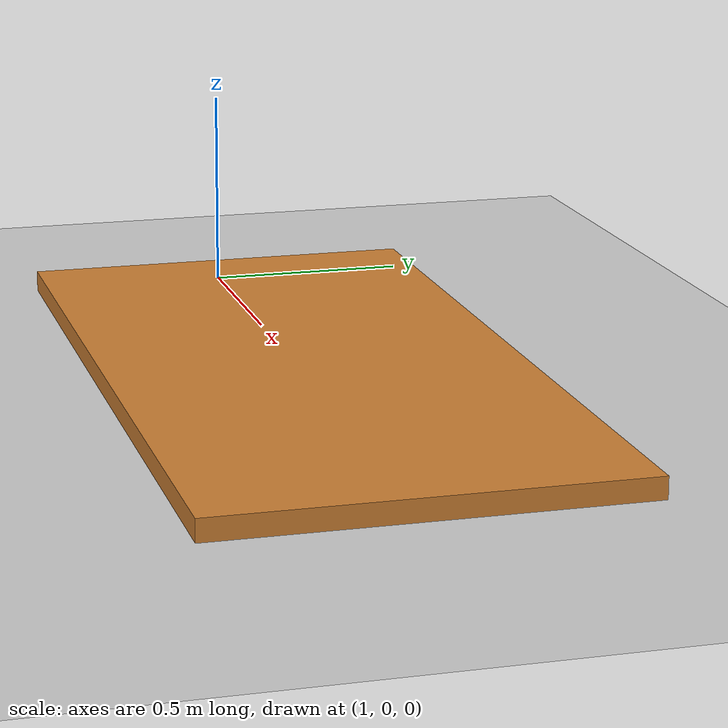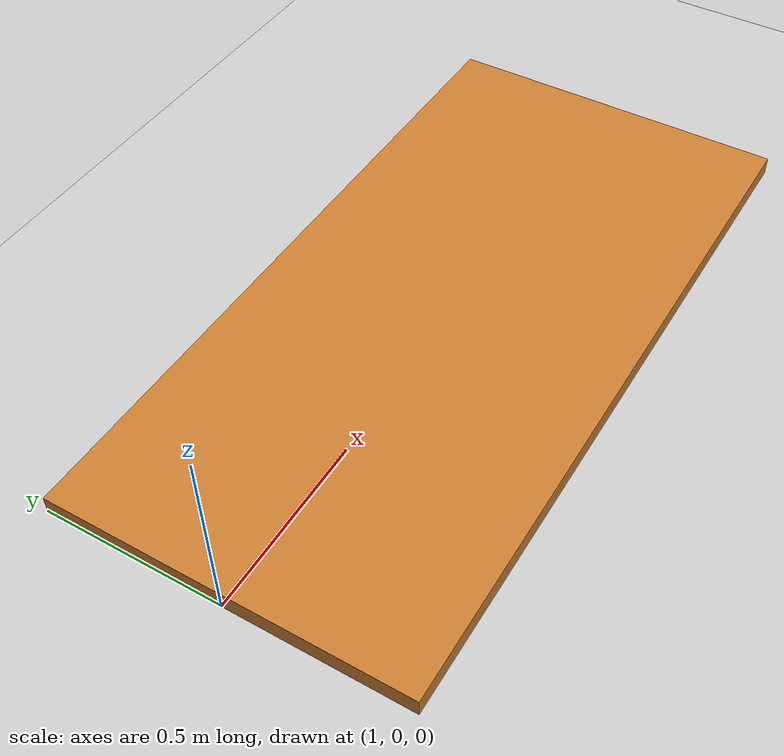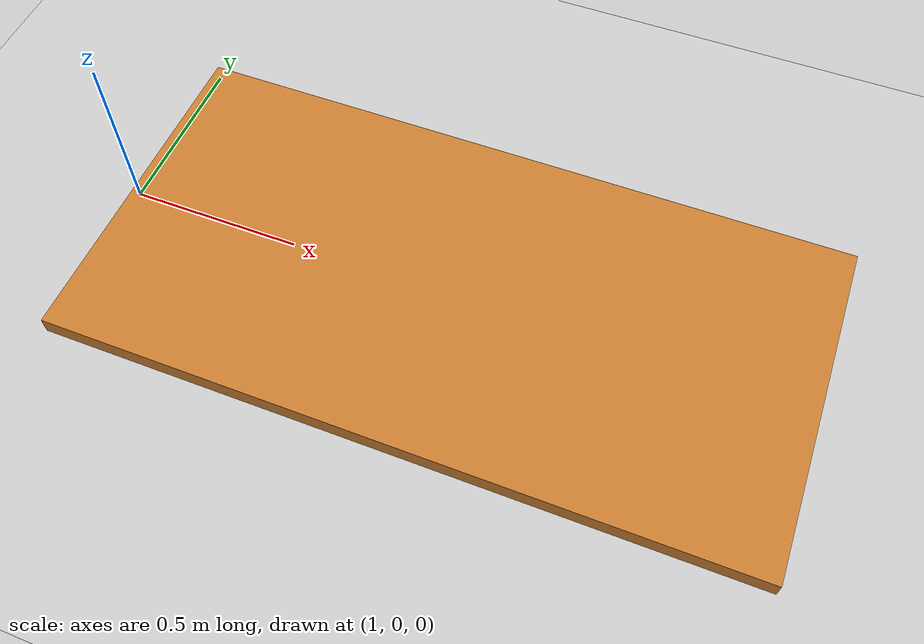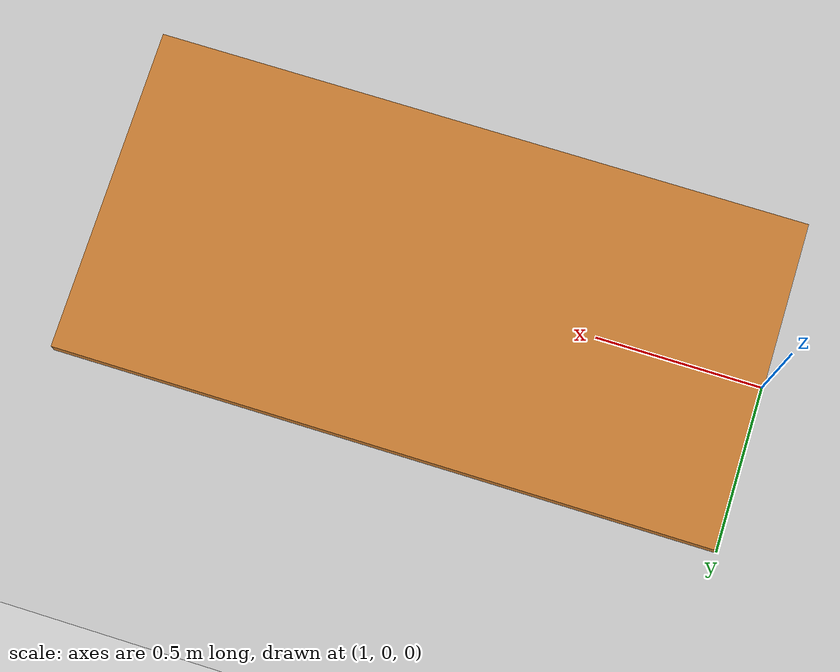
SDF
<?xml version="1.0" ?>
<sdf version="1.6">
  <world name="brain_swarm_demo">
    <!-- Global light source -->
    <include>
      <uri>model://sun</uri>
    </include>

    <!-- Ground plane -->
    <include>
      <uri>model://ground_plane</uri>
    </include>

    <!-- A simple table for demonstration -->
    <model name="demo_table">
      <pose>2 0 0 0 0 0</pose>
      <static>true</static>
      <link name="link">
        <visual name="visual">
          <geometry>
            <box>
              <size>2 1 0.1</size>
            </box>
          </geometry>
          <material>
            <ambient>0.8 0.5 0.2 1</ambient>
            <diffuse>0.8 0.5 0.2 1</diffuse>
          </material>
        </visual>
        <collision name="collision">
          <geometry>
            <box>
              <size>2 1 0.1</size>
            </box>
          </geometry>
        </collision>
      </link>
    </model>

    <!-- Physics settings -->
    <physics type="ode">
      <real_time_update_rate>1000.0</real_time_update_rate>
      <max_step_size>0.001</max_step_size>
      <real_time_factor>1</real_time_factor>
      <ode>
        <solver>
          <type>quick</type>
          <iters>150</iters>
          <precon_iters>0</precon_iters>
          <sor>1.400000</sor>
          <use_dynamic_moi_rescaling>1</use_dynamic_moi_rescaling>
        </solver>
        <constraints>
          <cfm>0.00001</cfm>
          <erp>0.2</erp>
          <contact_max_correcting_vel>2000.000000</contact_max_correcting_vel>
          <contact_surface_layer>0.01000</contact_surface_layer>
        </constraints>
      </ode>
    </physics>

    <!-- Scene settings -->
    <scene>
      <ambient>0.4 0.4 0.4 1</ambient>
      <background>0.7 0.7 0.7 1</background>
      <shadows>true</shadows>
    </scene>

    <!-- Camera GUI settings -->
    <gui fullscreen='0'>
      <camera name='user_camera'>
        <pose>5 -5 3 0 0.3 2.3</pose>
        <view_controller>orbit</view_controller>
        <projection_type>perspective</projection_type>
      </camera>
    </gui>
  </world>
</sdf>
